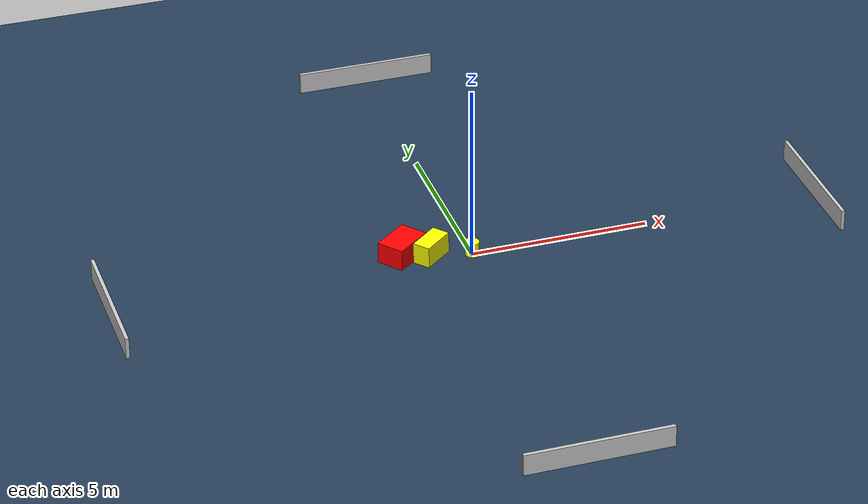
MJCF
<?xml version="1.0" ?>
<mujoco model="generated_environment">
  <option timestep="0.01" integrator="RK4" cone="elliptic"/>
  <default>
    <geom density="1"/>
  </default>
  <asset>
    <texture builtin="gradient" height="3072" name="skybox" rgb1="0.3 0.5 0.7" rgb2="0 0 0" type="skybox" width="512"/>
    <texture builtin="checker" height="300" name="groundplane" rgb1="0.2 0.3 0.4" rgb2="0.1 0.2 0.3" type="2d" width="300"/>
    <material name="groundplane" reflectance="0.2" texrepeat="5 5" texture="groundplane"/>
  </asset>
  <worldbody>
    <light dir="0 0 -1" directional="true" pos="0 0 1.5"/>
    <geom condim="3" friction="0.5 0.005 0.001" material="groundplane" name="floor" pos="0 0 0" size="0 0 0.05" type="plane"/>
    <body name="walls">
      <geom name="wall_1" condim="4" pos="-10.0 0.0 0.3" rgba="0.800000011920929 0.800000011920929 0.800000011920929 1.0" size="0.05 2.0 0.3" type="box"/>
      <geom name="wall_2" condim="4" pos="10.0 0.0 0.3" rgba="0.800000011920929 0.800000011920929 0.800000011920929 1.0" size="0.05 2.0 0.3" type="box"/>
      <geom name="wall_3" condim="4" pos="0.0 -10.0 0.3" rgba="0.800000011920929 0.800000011920929 0.800000011920929 1.0" size="2.0 0.05 0.3" type="box"/>
      <geom name="wall_4" condim="4" pos="0.0 10.0 0.3" rgba="0.800000011920929 0.800000011920929 0.800000011920929 1.0" size="2.0 0.05 0.3" type="box"/>
    </body>
    <body name="robot">
      <joint name="joint_x" type="slide" pos="0 0 0" axis="1 0 0"/>
      <joint name="joint_y" type="slide" pos="0 0 0" axis="0 1 0"/>
      <geom name="robot" type="cylinder" pos="0.0 0.0 0.2" size="0.2 0.2 0.0" mass="5.0" friction="1.0 0.005 0.0001" condim="4" rgba="1.0 1.0 0.0 1.0"/>
    </body>
    <body name="obstacle_1_movable">
      <geom name="obstacle_1_movable" condim="4" pos="-1.098707505555956 0.19924848561471883 0.3" euler="0 0 129.2353564531115" friction="0.0 0.005 0.001" rgba="1.0 1.0 0.0 1.0" size="0.24869390021424748 0.49108476666487916 0.3" type="box" mass="0.1"/>
      <joint type="free"/>
    </body>
    <body name="obstacle_2_static">
      <geom name="obstacle_2_static" condim="4" pos="-1.839911702961778 0.45356801256796053 0.3" euler="0 0 218.37309815020498" friction="0.0 0.005 0.001" rgba="1.0 0.0 0.0 1.0" size="0.575288604288046 0.39287840737864244 0.3" type="box"/>
    </body>
  </worldbody>
  <actuator>
    <motor name="actuator_x" joint="joint_x" gear="1" ctrlrange="-1 1"/>
    <motor name="actuator_y" joint="joint_y" gear="1" ctrlrange="-1 1"/>
  </actuator>
</mujoco>
